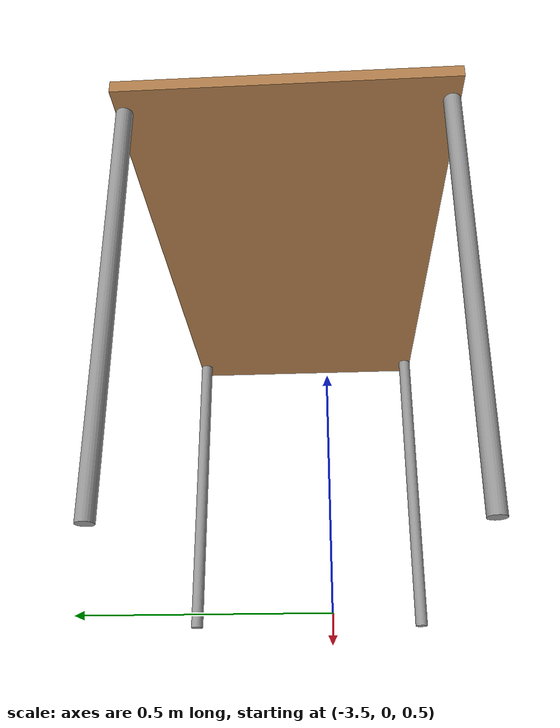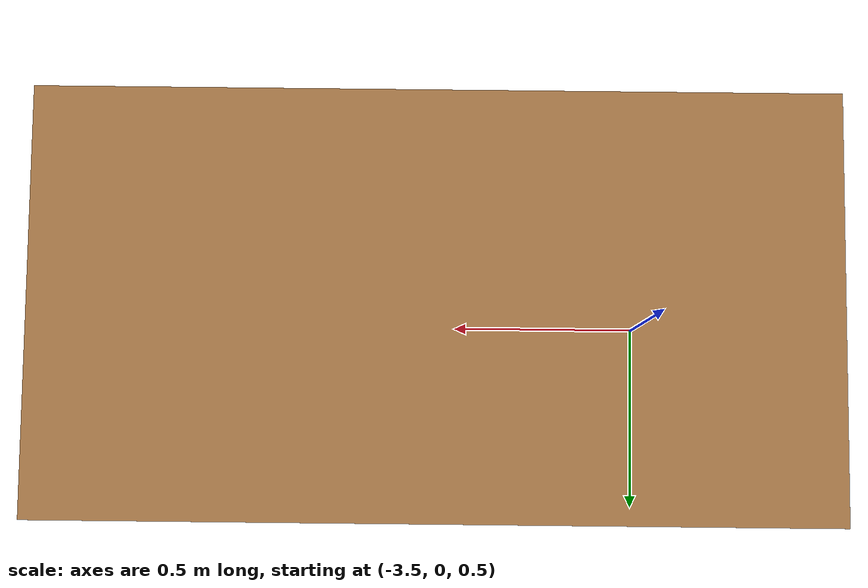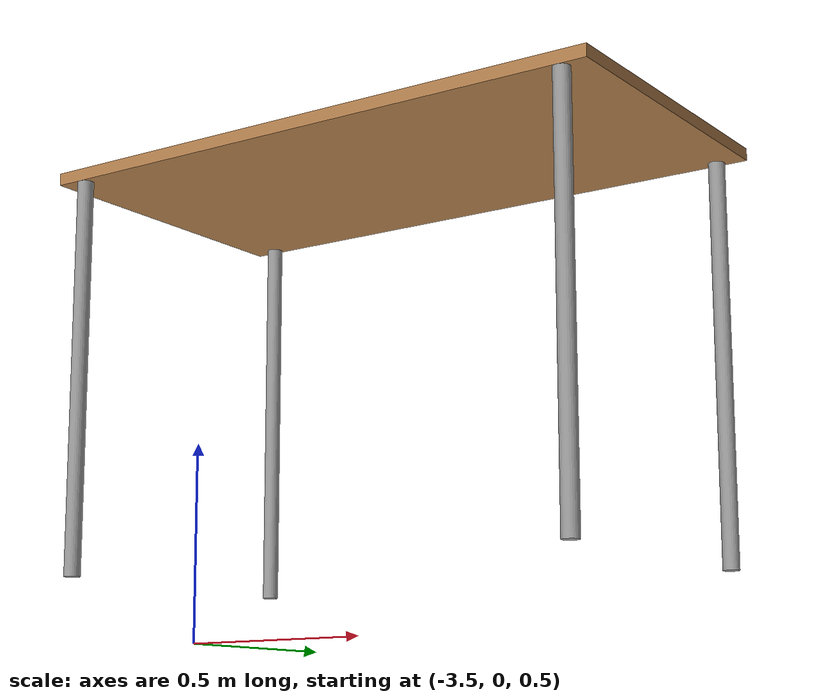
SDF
<?xml version='1.0'?>
<sdf version='1.6'>
  <model name='table_high'>
    <model name='table'>
      <static>1</static>
      <link name='link'>
        <collision name='surface'>
          <pose frame=''>0 0 1 0 -0 0</pose>
          <geometry>
            <box>
              <size>1.5 0.8 0.03</size>
            </box>
          </geometry>
          <surface>
            <friction>
              <ode>
                <mu>0.6</mu>
                <mu2>0.6</mu2>
              </ode>
            </friction>
          </surface>
        </collision>
        <visual name='visual1'>
          <pose frame=''>0 0 1 0 -0 0</pose>
          <geometry>
            <box>
              <size>1.5 0.8 0.03</size>
            </box>
          </geometry>
          <material>
            <script>
              <uri>file://media/materials/scripts/gazebo.material</uri>
              <name>Gazebo/Wood</name>
            </script>
          </material>
        </visual>
        <collision name='front_left_leg'>
          <pose frame=''>0.68 0.38 0.5 0 -0 0</pose>
          <geometry>
            <cylinder>
              <radius>0.02</radius>
              <length>1</length>
            </cylinder>
          </geometry>
        </collision>
        <visual name='front_left_leg'>
          <pose frame=''>0.68 0.38 0.5 0 -0 0</pose>
          <geometry>
            <cylinder>
              <radius>0.02</radius>
              <length>1</length>
            </cylinder>
          </geometry>
          <material>
            <script>
              <uri>file://media/materials/scripts/gazebo.material</uri>
              <name>Gazebo/Grey</name>
            </script>
          </material>
        </visual>
        <collision name='front_right_leg'>
          <pose frame=''>0.68 -0.38 0.5 0 -0 0</pose>
          <geometry>
            <cylinder>
              <radius>0.02</radius>
              <length>1</length>
            </cylinder>
          </geometry>
        </collision>
        <visual name='front_right_leg'>
          <pose frame=''>0.68 -0.38 0.5 0 -0 0</pose>
          <geometry>
            <cylinder>
              <radius>0.02</radius>
              <length>1</length>
            </cylinder>
          </geometry>
          <material>
            <script>
              <uri>file://media/materials/scripts/gazebo.material</uri>
              <name>Gazebo/Grey</name>
            </script>
          </material>
        </visual>
        <collision name='back_right_leg'>
          <pose frame=''>-0.68 -0.38 0.5 0 -0 0</pose>
          <geometry>
            <cylinder>
              <radius>0.02</radius>
              <length>1</length>
            </cylinder>
          </geometry>
        </collision>
        <visual name='back_right_leg'>
          <pose frame=''>-0.68 -0.38 0.5 0 -0 0</pose>
          <geometry>
            <cylinder>
              <radius>0.02</radius>
              <length>1</length>
            </cylinder>
          </geometry>
          <material>
            <script>
              <uri>file://media/materials/scripts/gazebo.material</uri>
              <name>Gazebo/Grey</name>
            </script>
          </material>
        </visual>
        <collision name='back_left_leg'>
          <pose frame=''>-0.68 0.38 0.5 0 -0 0</pose>
          <geometry>
            <cylinder>
              <radius>0.02</radius>
              <length>1</length>
            </cylinder>
          </geometry>
        </collision>
        <visual name='back_left_leg'>
          <pose frame=''>-0.68 0.38 0.5 0 -0 0</pose>
          <geometry>
            <cylinder>
              <radius>0.02</radius>
              <length>1</length>
            </cylinder>
          </geometry>
          <material>
            <script>
              <uri>file://media/materials/scripts/gazebo.material</uri>
              <name>Gazebo/Grey</name>
            </script>
          </material>
        </visual>
      </link>
      <pose frame=''>-2.94811 0.078805 0.648 0 -0 0</pose>
    </model>
    <static>0</static>
    <allow_auto_disable>1</allow_auto_disable>
  </model>
</sdf>
